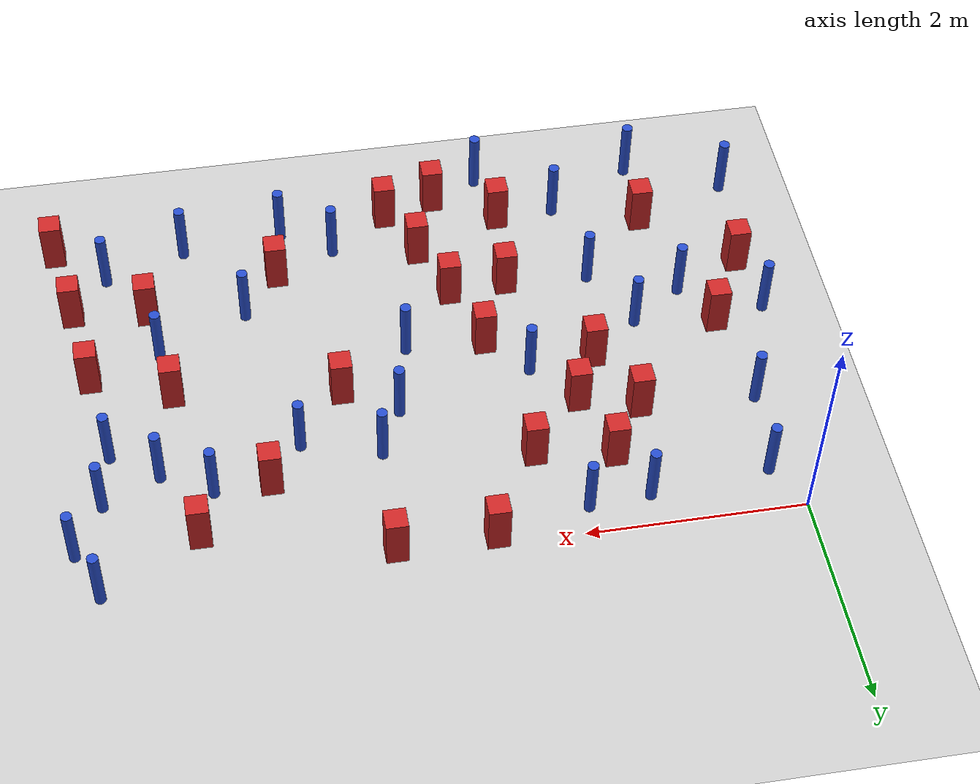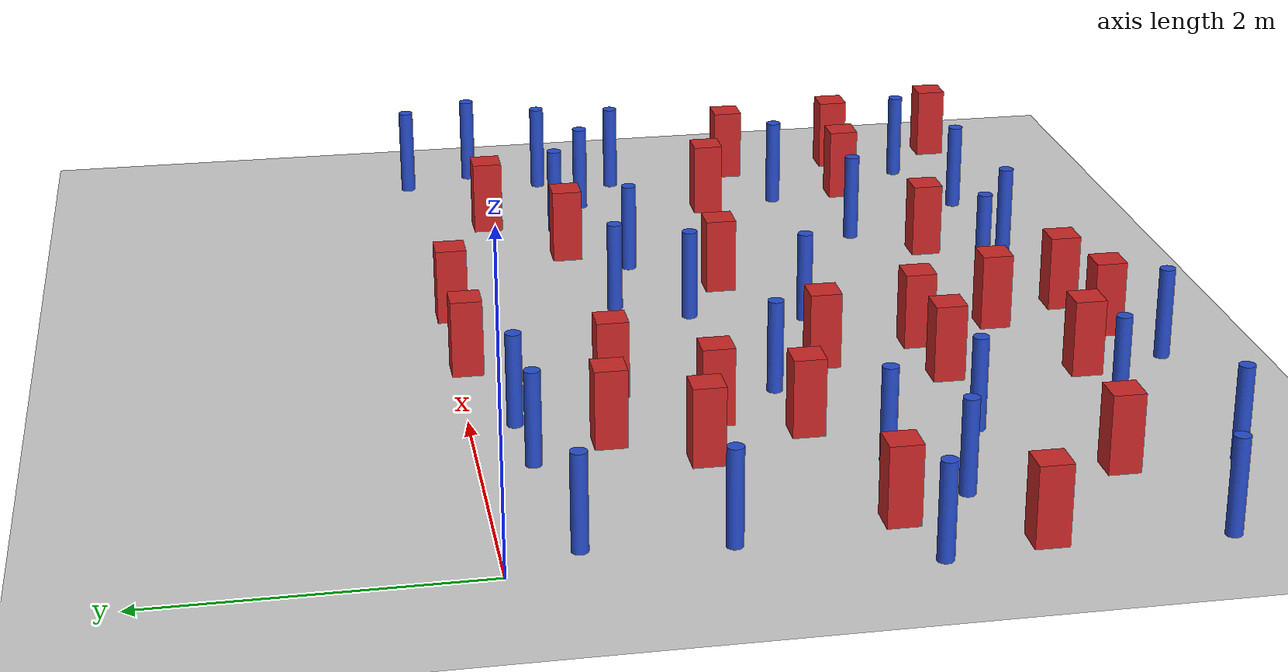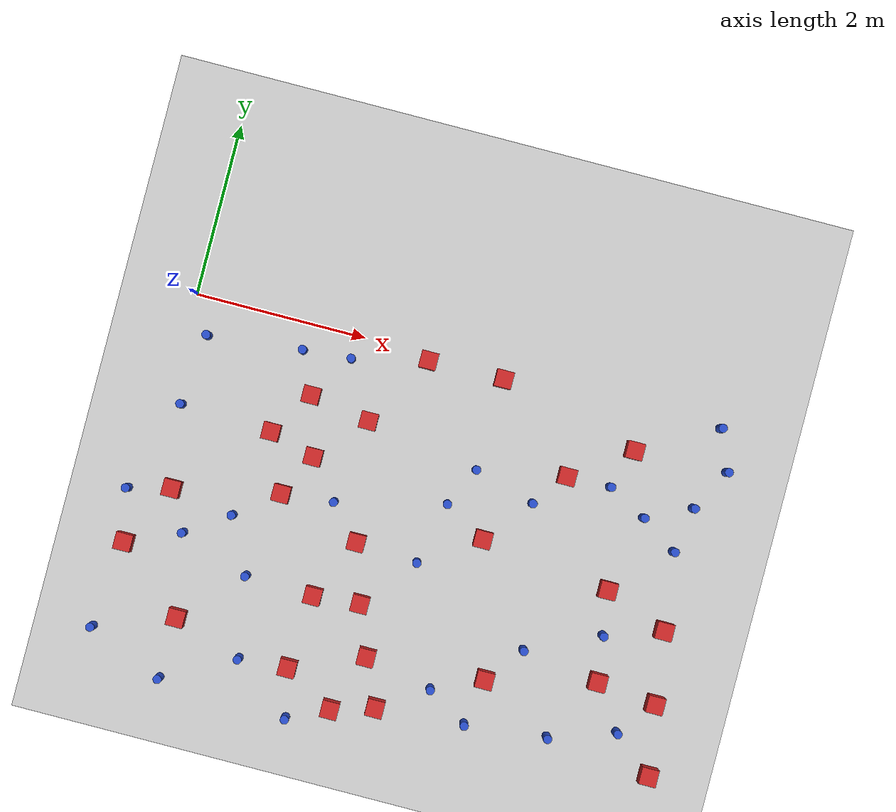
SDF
<sdf version="1.6">
 <world name="default">
  <model name="ground_plane">
   <static>1</static>
   <link name="link">
    <collision name="collision">
     <geometry><plane><normal>0 0 1</normal><size>100 100</size></plane></geometry>
     <surface><friction><ode><mu>100</mu><mu2>50</mu2></ode></friction></surface>
    </collision>
    <visual name="visual">
     <cast_shadows>0</cast_shadows>
     <geometry><plane><normal>0 0 1</normal><size>100 100</size></plane></geometry>
     <material>
      <ambient>1.0 1.0 1.0 1.0</ambient>
      <diffuse>0.8 0.8 0.8 1.0</diffuse>
      <specular>0.01 0.01 0.01 1.000000</specular>
     </material>
    </visual>
   </link>
  </model>
  <model name="NamedLocations">
   <static>true</static>
   <link name="DefaultStart"><pose>8.5 0 0 0 0 3.14</pose></link>
  </model>
  <model name="square_post_obstacle3">
   <static>true</static>
   <pose>3.8937766651 -1.8984932603 1.91545236811e-07 -7.35059704564e-06 1.12565212e-07 2.39332434364e-05</pose>
   <link name="link">
    <pose>0 0 0.25 0 -0 0</pose>
    <inertial>
     <mass>100</mass>
     <inertia>
      <ixx>0.166667</ixx>
      <ixy>0</ixy>
      <ixz>0</ixz>
      <iyy>0.166667</iyy>
      <iyz>0</iyz>
      <izz>0.166667</izz>
     </inertia>
    </inertial>
    <collision name="collision"><geometry><box><size>.2 .2 .5</size></box></geometry></collision>
    <visual name="visual">
     <geometry><box><size>.2 .2 .5</size></box></geometry>
     <material>
      <script><name>Gazebo/Red</name><uri>file://media/materials/scripts/gazebo.material</uri></script>
     </material>
    </visual>
   </link>
  </model>
  <model name="pole_obstacle4">
   <static>true</static>
   <pose>1.04166894507 -2.35484419023 7.38925637345e-09 -8.471706928e-08 1.2497676505e-08 -1.74513093017e-07</pose>
   <link name="link">
    <pose>0 0 0.3 0 -0 0</pose>
    <inertial>
     <mass>1</mass>
     <inertia><ixx>0.145833</ixx><ixy>0</ixy><ixz>0</ixz><iyy>0.145833</iyy><iyz>0</iyz><izz>0.125</izz></inertia>
    </inertial>
    <collision name="collision">
     <geometry><cylinder><radius>0.05</radius><length>.6</length></cylinder></geometry>
    </collision>
    <visual name="visual">
     <geometry><cylinder><radius>0.05</radius><length>.6</length></cylinder></geometry>
     <material>
      <script><name>Gazebo/Blue</name><uri>file://media/materials/scripts/gazebo.material</uri></script>
     </material>
    </visual>
   </link>
  </model>
  <model name="pole_obstacle6">
   <static>true</static>
   <pose>5.61509439641 -1.19399128094 7.38925637345e-09 -8.471706928e-08 1.24976765134e-08 -1.74513093015e-07</pose>
   <link name="link">
    <pose>0 0 0.3 0 -0 0</pose>
    <inertial>
     <mass>1</mass>
     <inertia><ixx>0.145833</ixx><ixy>0</ixy><ixz>0</ixz><iyy>0.145833</iyy><iyz>0</iyz><izz>0.125</izz></inertia>
    </inertial>
    <collision name="collision">
     <geometry><cylinder><radius>0.05</radius><length>.6</length></cylinder></geometry>
    </collision>
    <visual name="visual">
     <geometry><cylinder><radius>0.05</radius><length>.6</length></cylinder></geometry>
     <material>
      <script><name>Gazebo/Blue</name><uri>file://media/materials/scripts/gazebo.material</uri></script>
     </material>
    </visual>
   </link>
  </model>
  <model name="square_post_obstacle9">
   <static>true</static>
   <pose>4.31915654539 -3.44956911372 1.91545236811e-07 -7.35059704564e-06 1.12565212e-07 2.39332434364e-05</pose>
   <link name="link">
    <pose>0 0 0.25 0 -0 0</pose>
    <inertial>
     <mass>100</mass>
     <inertia>
      <ixx>0.166667</ixx>
      <ixy>0</ixy>
      <ixz>0</ixz>
      <iyy>0.166667</iyy>
      <iyz>0</iyz>
      <izz>0.166667</izz>
     </inertia>
    </inertial>
    <collision name="collision"><geometry><box><size>.2 .2 .5</size></box></geometry></collision>
    <visual name="visual">
     <geometry><box><size>.2 .2 .5</size></box></geometry>
     <material>
      <script><name>Gazebo/Red</name><uri>file://media/materials/scripts/gazebo.material</uri></script>
     </material>
    </visual>
   </link>
  </model>
  <model name="square_post_obstacle12">
   <static>true</static>
   <pose>2.49780389506 -2.29794122637 1.91545236811e-07 -7.35059704564e-06 1.12565212e-07 2.39332434364e-05</pose>
   <link name="link">
    <pose>0 0 0.25 0 -0 0</pose>
    <inertial>
     <mass>100</mass>
     <inertia>
      <ixx>0.166667</ixx>
      <ixy>0</ixy>
      <ixz>0</ixz>
      <iyy>0.166667</iyy>
      <iyz>0</iyz>
      <izz>0.166667</izz>
     </inertia>
    </inertial>
    <collision name="collision"><geometry><box><size>.2 .2 .5</size></box></geometry></collision>
    <visual name="visual">
     <geometry><box><size>.2 .2 .5</size></box></geometry>
     <material>
      <script><name>Gazebo/Red</name><uri>file://media/materials/scripts/gazebo.material</uri></script>
     </material>
    </visual>
   </link>
  </model>
  <model name="square_post_obstacle16">
   <static>true</static>
   <pose>6.16754811721 -2.38973344418 1.91545236811e-07 -7.35059704564e-06 1.12565212e-07 2.39332434364e-05</pose>
   <link name="link">
    <pose>0 0 0.25 0 -0 0</pose>
    <inertial>
     <mass>100</mass>
     <inertia>
      <ixx>0.166667</ixx>
      <ixy>0</ixy>
      <ixz>0</ixz>
      <iyy>0.166667</iyy>
      <iyz>0</iyz>
      <izz>0.166667</izz>
     </inertia>
    </inertial>
    <collision name="collision"><geometry><box><size>.2 .2 .5</size></box></geometry></collision>
    <visual name="visual">
     <geometry><box><size>.2 .2 .5</size></box></geometry>
     <material>
      <script><name>Gazebo/Red</name><uri>file://media/materials/scripts/gazebo.material</uri></script>
     </material>
    </visual>
   </link>
  </model>
  <model name="pole_obstacle12">
   <static>true</static>
   <pose>4.33866164105 -1.3552663525 7.38925637345e-09 -8.471706928e-08 1.24976765134e-08 -1.74513093015e-07</pose>
   <link name="link">
    <pose>0 0 0.3 0 -0 0</pose>
    <inertial>
     <mass>1</mass>
     <inertia><ixx>0.145833</ixx><ixy>0</ixy><ixz>0</ixz><iyy>0.145833</iyy><iyz>0</iyz><izz>0.125</izz></inertia>
    </inertial>
    <collision name="collision">
     <geometry><cylinder><radius>0.05</radius><length>.6</length></cylinder></geometry>
    </collision>
    <visual name="visual">
     <geometry><cylinder><radius>0.05</radius><length>.6</length></cylinder></geometry>
     <material>
      <script><name>Gazebo/Blue</name><uri>file://media/materials/scripts/gazebo.material</uri></script>
     </material>
    </visual>
   </link>
  </model>
  <model name="square_post_obstacle23">
   <static>true</static>
   <pose>2.71716408719 -2.96980455667 1.91545236811e-07 -7.35059704564e-06 1.12565212e-07 2.39332434364e-05</pose>
   <link name="link">
    <pose>0 0 0.25 0 -0 0</pose>
    <inertial>
     <mass>100</mass>
     <inertia>
      <ixx>0.166667</ixx>
      <ixy>0</ixy>
      <ixz>0</ixz>
      <iyy>0.166667</iyy>
      <iyz>0</iyz>
      <izz>0.166667</izz>
     </inertia>
    </inertial>
    <collision name="collision"><geometry><box><size>.2 .2 .5</size></box></geometry></collision>
    <visual name="visual">
     <geometry><box><size>.2 .2 .5</size></box></geometry>
     <material>
      <script><name>Gazebo/Red</name><uri>file://media/materials/scripts/gazebo.material</uri></script>
     </material>
    </visual>
   </link>
  </model>
  <model name="square_post_obstacle27">
   <static>true</static>
   <pose>2.68790194657 -4.22749103468 1.91545236811e-07 -7.35059704564e-06 1.12565212e-07 2.39332434364e-05</pose>
   <link name="link">
    <pose>0 0 0.25 0 -0 0</pose>
    <inertial>
     <mass>100</mass>
     <inertia>
      <ixx>0.166667</ixx>
      <ixy>0</ixy>
      <ixz>0</ixz>
      <iyy>0.166667</iyy>
      <iyz>0</iyz>
      <izz>0.166667</izz>
     </inertia>
    </inertial>
    <collision name="collision"><geometry><box><size>.2 .2 .5</size></box></geometry></collision>
    <visual name="visual">
     <geometry><box><size>.2 .2 .5</size></box></geometry>
     <material>
      <script><name>Gazebo/Red</name><uri>file://media/materials/scripts/gazebo.material</uri></script>
     </material>
    </visual>
   </link>
  </model>
  <model name="pole_obstacle25">
   <static>true</static>
   <pose>5.17693976684 -3.91143541986 7.38925637345e-09 -8.47170692798e-08 1.24976764937e-08 -1.74513093023e-07</pose>
   <link name="link">
    <pose>0 0 0.3 0 -0 0</pose>
    <inertial>
     <mass>1</mass>
     <inertia><ixx>0.145833</ixx><ixy>0</ixy><ixz>0</ixz><iyy>0.145833</iyy><iyz>0</iyz><izz>0.125</izz></inertia>
    </inertial>
    <collision name="collision">
     <geometry><cylinder><radius>0.05</radius><length>.6</length></cylinder></geometry>
    </collision>
    <visual name="visual">
     <geometry><cylinder><radius>0.05</radius><length>.6</length></cylinder></geometry>
     <material>
      <script><name>Gazebo/Blue</name><uri>file://media/materials/scripts/gazebo.material</uri></script>
     </material>
    </visual>
   </link>
  </model>
  <model name="square_post_obstacle37">
   <static>true</static>
   <pose>2.77352484609 -0.0713776456526 1.91545236811e-07 -7.35059704564e-06 1.12565212e-07 2.39332434364e-05</pose>
   <link name="link">
    <pose>0 0 0.25 0 -0 0</pose>
    <inertial>
     <mass>100</mass>
     <inertia>
      <ixx>0.166667</ixx>
      <ixy>0</ixy>
      <ixz>0</ixz>
      <iyy>0.166667</iyy>
      <iyz>0</iyz>
      <izz>0.166667</izz>
     </inertia>
    </inertial>
    <collision name="collision"><geometry><box><size>.2 .2 .5</size></box></geometry></collision>
    <visual name="visual">
     <geometry><box><size>.2 .2 .5</size></box></geometry>
     <material>
      <script><name>Gazebo/Red</name><uri>file://media/materials/scripts/gazebo.material</uri></script>
     </material>
    </visual>
   </link>
  </model>
  <model name="square_post_obstacle41">
   <static>true</static>
   <pose>2.28273743575 -0.915989326933 1.91545236811e-07 -7.35059704564e-06 1.12565212e-07 2.39332434364e-05</pose>
   <link name="link">
    <pose>0 0 0.25 0 -0 0</pose>
    <inertial>
     <mass>100</mass>
     <inertia>
      <ixx>0.166667</ixx>
      <ixy>0</ixy>
      <ixz>0</ixz>
      <iyy>0.166667</iyy>
      <iyz>0</iyz>
      <izz>0.166667</izz>
     </inertia>
    </inertial>
    <collision name="collision"><geometry><box><size>.2 .2 .5</size></box></geometry></collision>
    <visual name="visual">
     <geometry><box><size>.2 .2 .5</size></box></geometry>
     <material>
      <script><name>Gazebo/Red</name><uri>file://media/materials/scripts/gazebo.material</uri></script>
     </material>
    </visual>
   </link>
  </model>
  <model name="square_post_obstacle51">
   <static>true</static>
   <pose>5.42591962191 -2.09950732267 1.91545236811e-07 -7.35059704564e-06 1.12565212e-07 2.39332434364e-05</pose>
   <link name="link">
    <pose>0 0 0.25 0 -0 0</pose>
    <inertial>
     <mass>100</mass>
     <inertia>
      <ixx>0.166667</ixx>
      <ixy>0</ixy>
      <ixz>0</ixz>
      <iyy>0.166667</iyy>
      <iyz>0</iyz>
      <izz>0.166667</izz>
     </inertia>
    </inertial>
    <collision name="collision"><geometry><box><size>.2 .2 .5</size></box></geometry></collision>
    <visual name="visual">
     <geometry><box><size>.2 .2 .5</size></box></geometry>
     <material>
      <script><name>Gazebo/Red</name><uri>file://media/materials/scripts/gazebo.material</uri></script>
     </material>
    </visual>
   </link>
  </model>
  <model name="square_post_obstacle55">
   <static>true</static>
   <pose>1.2328728585 -1.31708763319 1.91545236811e-07 -7.35059704564e-06 1.12565212e-07 2.39332434364e-05</pose>
   <link name="link">
    <pose>0 0 0.25 0 -0 0</pose>
    <inertial>
     <mass>100</mass>
     <inertia>
      <ixx>0.166667</ixx>
      <ixy>0</ixy>
      <ixz>0</ixz>
      <iyy>0.166667</iyy>
      <iyz>0</iyz>
      <izz>0.166667</izz>
     </inertia>
    </inertial>
    <collision name="collision"><geometry><box><size>.2 .2 .5</size></box></geometry></collision>
    <visual name="visual">
     <geometry><box><size>.2 .2 .5</size></box></geometry>
     <material>
      <script><name>Gazebo/Red</name><uri>file://media/materials/scripts/gazebo.material</uri></script>
     </material>
    </visual>
   </link>
  </model>
  <model name="pole_obstacle52">
   <static>true</static>
   <pose>-0.193092147477 -3.9942192586 7.38925637345e-09 -8.471706928e-08 1.2497676513e-08 -1.74513093014e-07</pose>
   <link name="link">
    <pose>0 0 0.3 0 -0 0</pose>
    <inertial>
     <mass>1</mass>
     <inertia><ixx>0.145833</ixx><ixy>0</ixy><ixz>0</ixz><iyy>0.145833</iyy><iyz>0</iyz><izz>0.125</izz></inertia>
    </inertial>
    <collision name="collision">
     <geometry><cylinder><radius>0.05</radius><length>.6</length></cylinder></geometry>
    </collision>
    <visual name="visual">
     <geometry><cylinder><radius>0.05</radius><length>.6</length></cylinder></geometry>
     <material>
      <script><name>Gazebo/Blue</name><uri>file://media/materials/scripts/gazebo.material</uri></script>
     </material>
    </visual>
   </link>
  </model>
  <model name="pole_obstacle53">
   <static>true</static>
   <pose>0.698277670628 -4.37610782796 7.38925637345e-09 -8.471706928e-08 1.24976765086e-08 -1.74513093015e-07</pose>
   <link name="link">
    <pose>0 0 0.3 0 -0 0</pose>
    <inertial>
     <mass>1</mass>
     <inertia><ixx>0.145833</ixx><ixy>0</ixy><ixz>0</ixz><iyy>0.145833</iyy><iyz>0</iyz><izz>0.125</izz></inertia>
    </inertial>
    <collision name="collision">
     <geometry><cylinder><radius>0.05</radius><length>.6</length></cylinder></geometry>
    </collision>
    <visual name="visual">
     <geometry><cylinder><radius>0.05</radius><length>.6</length></cylinder></geometry>
     <material>
      <script><name>Gazebo/Blue</name><uri>file://media/materials/scripts/gazebo.material</uri></script>
     </material>
    </visual>
   </link>
  </model>
  <model name="pole_obstacle54">
   <static>true</static>
   <pose>6.14248458608 -0.94422953435 7.38925637345e-09 -8.47170692799e-08 1.24976765038e-08 -1.74513093018e-07</pose>
   <link name="link">
    <pose>0 0 0.3 0 -0 0</pose>
    <inertial>
     <mass>1</mass>
     <inertia><ixx>0.145833</ixx><ixy>0</ixy><ixz>0</ixz><iyy>0.145833</iyy><iyz>0</iyz><izz>0.125</izz></inertia>
    </inertial>
    <collision name="collision">
     <geometry><cylinder><radius>0.05</radius><length>.6</length></cylinder></geometry>
    </collision>
    <visual name="visual">
     <geometry><cylinder><radius>0.05</radius><length>.6</length></cylinder></geometry>
     <material>
      <script><name>Gazebo/Blue</name><uri>file://media/materials/scripts/gazebo.material</uri></script>
     </material>
    </visual>
   </link>
  </model>
  <model name="square_post_obstacle61">
   <static>true</static>
   <pose>0.294672739264 -2.23301961076 1.91545236811e-07 -7.35059704564e-06 1.12565212e-07 2.39332434364e-05</pose>
   <link name="link">
    <pose>0 0 0.25 0 -0 0</pose>
    <inertial>
     <mass>100</mass>
     <inertia>
      <ixx>0.166667</ixx>
      <ixy>0</ixy>
      <ixz>0</ixz>
      <iyy>0.166667</iyy>
      <iyz>0</iyz>
      <izz>0.166667</izz>
     </inertia>
    </inertial>
    <collision name="collision"><geometry><box><size>.2 .2 .5</size></box></geometry></collision>
    <visual name="visual">
     <geometry><box><size>.2 .2 .5</size></box></geometry>
     <material>
      <script><name>Gazebo/Red</name><uri>file://media/materials/scripts/gazebo.material</uri></script>
     </material>
    </visual>
   </link>
  </model>
  <model name="pole_obstacle58">
   <static>true</static>
   <pose>0.153884641596 -1.27039518763 7.38925637345e-09 -8.47170692799e-08 1.24976765106e-08 -1.74513093015e-07</pose>
   <link name="link">
    <pose>0 0 0.3 0 -0 0</pose>
    <inertial>
     <mass>1</mass>
     <inertia><ixx>0.145833</ixx><ixy>0</ixy><ixz>0</ixz><iyy>0.145833</iyy><iyz>0</iyz><izz>0.125</izz></inertia>
    </inertial>
    <collision name="collision">
     <geometry><cylinder><radius>0.05</radius><length>.6</length></cylinder></geometry>
    </collision>
    <visual name="visual">
     <geometry><cylinder><radius>0.05</radius><length>.6</length></cylinder></geometry>
     <material>
      <script><name>Gazebo/Blue</name><uri>file://media/materials/scripts/gazebo.material</uri></script>
     </material>
    </visual>
   </link>
  </model>
  <model name="square_post_obstacle62">
   <static>true</static>
   <pose>3.18496818869 -4.08031341453 1.91545236811e-07 -7.35059704564e-06 1.12565212e-07 2.39332434364e-05</pose>
   <link name="link">
    <pose>0 0 0.25 0 -0 0</pose>
    <inertial>
     <mass>100</mass>
     <inertia>
      <ixx>0.166667</ixx>
      <ixy>0</ixy>
      <ixz>0</ixz>
      <iyy>0.166667</iyy>
      <iyz>0</iyz>
      <izz>0.166667</izz>
     </inertia>
    </inertial>
    <collision name="collision"><geometry><box><size>.2 .2 .5</size></box></geometry></collision>
    <visual name="visual">
     <geometry><box><size>.2 .2 .5</size></box></geometry>
     <material>
      <script><name>Gazebo/Red</name><uri>file://media/materials/scripts/gazebo.material</uri></script>
     </material>
    </visual>
   </link>
  </model>
  <model name="square_post_obstacle67">
   <static>true</static>
   <pose>1.77316426952 -1.47517456321 1.91545236811e-07 -7.35059704564e-06 1.12565212e-07 2.39332434364e-05</pose>
   <link name="link">
    <pose>0 0 0.25 0 -0 0</pose>
    <inertial>
     <mass>100</mass>
     <inertia>
      <ixx>0.166667</ixx>
      <ixy>0</ixy>
      <ixz>0</ixz>
      <iyy>0.166667</iyy>
      <iyz>0</iyz>
      <izz>0.166667</izz>
     </inertia>
    </inertial>
    <collision name="collision"><geometry><box><size>.2 .2 .5</size></box></geometry></collision>
    <visual name="visual">
     <geometry><box><size>.2 .2 .5</size></box></geometry>
     <material>
      <script><name>Gazebo/Red</name><uri>file://media/materials/scripts/gazebo.material</uri></script>
     </material>
    </visual>
   </link>
  </model>
  <model name="square_post_obstacle69">
   <static>true</static>
   <pose>4.64451143033 -0.956926021396 1.91545236811e-07 -7.35059704564e-06 1.12565212e-07 2.39332434364e-05</pose>
   <link name="link">
    <pose>0 0 0.25 0 -0 0</pose>
    <inertial>
     <mass>100</mass>
     <inertia>
      <ixx>0.166667</ixx>
      <ixy>0</ixy>
      <ixz>0</ixz>
      <iyy>0.166667</iyy>
      <iyz>0</iyz>
      <izz>0.166667</izz>
     </inertia>
    </inertial>
    <collision name="collision"><geometry><box><size>.2 .2 .5</size></box></geometry></collision>
    <visual name="visual">
     <geometry><box><size>.2 .2 .5</size></box></geometry>
     <material>
      <script><name>Gazebo/Red</name><uri>file://media/materials/scripts/gazebo.material</uri></script>
     </material>
    </visual>
   </link>
  </model>
  <model name="square_post_obstacle71">
   <static>true</static>
   <pose>2.17058475366 -3.01627403967 1.91545236811e-07 -7.35059704564e-06 1.12565212e-07 2.39332434364e-05</pose>
   <link name="link">
    <pose>0 0 0.25 0 -0 0</pose>
    <inertial>
     <mass>100</mass>
     <inertia>
      <ixx>0.166667</ixx>
      <ixy>0</ixy>
      <ixz>0</ixz>
      <iyy>0.166667</iyy>
      <iyz>0</iyz>
      <izz>0.166667</izz>
     </inertia>
    </inertial>
    <collision name="collision"><geometry><box><size>.2 .2 .5</size></box></geometry></collision>
    <visual name="visual">
     <geometry><box><size>.2 .2 .5</size></box></geometry>
     <material>
      <script><name>Gazebo/Red</name><uri>file://media/materials/scripts/gazebo.material</uri></script>
     </material>
    </visual>
   </link>
  </model>
  <model name="pole_obstacle75">
   <static>true</static>
   <pose>1.36838175106 -2.98972073504 7.38925637345e-09 -8.47170692799e-08 1.24976765053e-08 -1.74513093017e-07</pose>
   <link name="link">
    <pose>0 0 0.3 0 -0 0</pose>
    <inertial>
     <mass>1</mass>
     <inertia><ixx>0.145833</ixx><ixy>0</ixy><ixz>0</ixz><iyy>0.145833</iyy><iyz>0</iyz><izz>0.125</izz></inertia>
    </inertial>
    <collision name="collision">
     <geometry><cylinder><radius>0.05</radius><length>.6</length></cylinder></geometry>
    </collision>
    <visual name="visual">
     <geometry><cylinder><radius>0.05</radius><length>.6</length></cylinder></geometry>
     <material>
      <script><name>Gazebo/Blue</name><uri>file://media/materials/scripts/gazebo.material</uri></script>
     </material>
    </visual>
   </link>
  </model>
  <model name="pole_obstacle77">
   <static>true</static>
   <pose>5.50438523685 -2.61971904938 7.38925637345e-09 -8.47170692798e-08 1.24976764937e-08 -1.74513093023e-07</pose>
   <link name="link">
    <pose>0 0 0.3 0 -0 0</pose>
    <inertial>
     <mass>1</mass>
     <inertia><ixx>0.145833</ixx><ixy>0</ixy><ixz>0</ixz><iyy>0.145833</iyy><iyz>0</iyz><izz>0.125</izz></inertia>
    </inertial>
    <collision name="collision">
     <geometry><cylinder><radius>0.05</radius><length>.6</length></cylinder></geometry>
    </collision>
    <visual name="visual">
     <geometry><cylinder><radius>0.05</radius><length>.6</length></cylinder></geometry>
     <material>
      <script><name>Gazebo/Blue</name><uri>file://media/materials/scripts/gazebo.material</uri></script>
     </material>
    </visual>
   </link>
  </model>
  <model name="pole_obstacle85">
   <static>true</static>
   <pose>4.21934948031 -4.00681977218 7.38925637345e-09 -8.47170692796e-08 1.24976764791e-08 -1.74513093031e-07</pose>
   <link name="link">
    <pose>0 0 0.3 0 -0 0</pose>
    <inertial>
     <mass>1</mass>
     <inertia><ixx>0.145833</ixx><ixy>0</ixy><ixz>0</ixz><iyy>0.145833</iyy><iyz>0</iyz><izz>0.125</izz></inertia>
    </inertial>
    <collision name="collision">
     <geometry><cylinder><radius>0.05</radius><length>.6</length></cylinder></geometry>
    </collision>
    <visual name="visual">
     <geometry><cylinder><radius>0.05</radius><length>.6</length></cylinder></geometry>
     <material>
      <script><name>Gazebo/Blue</name><uri>file://media/materials/scripts/gazebo.material</uri></script>
     </material>
    </visual>
   </link>
  </model>
  <model name="pole_obstacle95">
   <static>true</static>
   <pose>0.243311991185 -0.433131160143 7.38925637345e-09 -8.47170692798e-08 1.24976765003e-08 -1.74513093019e-07</pose>
   <link name="link">
    <pose>0 0 0.3 0 -0 0</pose>
    <inertial>
     <mass>1</mass>
     <inertia><ixx>0.145833</ixx><ixy>0</ixy><ixz>0</ixz><iyy>0.145833</iyy><iyz>0</iyz><izz>0.125</izz></inertia>
    </inertial>
    <collision name="collision">
     <geometry><cylinder><radius>0.05</radius><length>.6</length></cylinder></geometry>
    </collision>
    <visual name="visual">
     <geometry><cylinder><radius>0.05</radius><length>.6</length></cylinder></geometry>
     <material>
      <script><name>Gazebo/Blue</name><uri>file://media/materials/scripts/gazebo.material</uri></script>
     </material>
    </visual>
   </link>
  </model>
  <model name="square_post_obstacle88">
   <static>true</static>
   <pose>5.31885383164 -0.474055349663 1.91545236811e-07 -7.35059704564e-06 1.12565212e-07 2.39332434364e-05</pose>
   <link name="link">
    <pose>0 0 0.25 0 -0 0</pose>
    <inertial>
     <mass>100</mass>
     <inertia>
      <ixx>0.166667</ixx>
      <ixy>0</ixy>
      <ixz>0</ixz>
      <iyy>0.166667</iyy>
      <iyz>0</iyz>
      <izz>0.166667</izz>
     </inertia>
    </inertial>
    <collision name="collision"><geometry><box><size>.2 .2 .5</size></box></geometry></collision>
    <visual name="visual">
     <geometry><box><size>.2 .2 .5</size></box></geometry>
     <material>
      <script><name>Gazebo/Red</name><uri>file://media/materials/scripts/gazebo.material</uri></script>
     </material>
    </visual>
   </link>
  </model>
  <model name="pole_obstacle103">
   <static>true</static>
   <pose>1.91048069236 -0.276002448584 7.38925637345e-09 -8.47170692798e-08 1.24976764989e-08 -1.74513093022e-07</pose>
   <link name="link">
    <pose>0 0 0.3 0 -0 0</pose>
    <inertial>
     <mass>1</mass>
     <inertia><ixx>0.145833</ixx><ixy>0</ixy><ixz>0</ixz><iyy>0.145833</iyy><iyz>0</iyz><izz>0.125</izz></inertia>
    </inertial>
    <collision name="collision">
     <geometry><cylinder><radius>0.05</radius><length>.6</length></cylinder></geometry>
    </collision>
    <visual name="visual">
     <geometry><cylinder><radius>0.05</radius><length>.6</length></cylinder></geometry>
     <material>
      <script><name>Gazebo/Blue</name><uri>file://media/materials/scripts/gazebo.material</uri></script>
     </material>
    </visual>
   </link>
  </model>
  <model name="square_post_obstacle104">
   <static>true</static>
   <pose>0.720083636477 -3.65393101458 1.91545236811e-07 -7.35059704564e-06 1.12565212e-07 2.39332434364e-05</pose>
   <link name="link">
    <pose>0 0 0.25 0 -0 0</pose>
    <inertial>
     <mass>100</mass>
     <inertia>
      <ixx>0.166667</ixx>
      <ixy>0</ixy>
      <ixz>0</ixz>
      <iyy>0.166667</iyy>
      <iyz>0</iyz>
      <izz>0.166667</izz>
     </inertia>
    </inertial>
    <collision name="collision"><geometry><box><size>.2 .2 .5</size></box></geometry></collision>
    <visual name="visual">
     <geometry><box><size>.2 .2 .5</size></box></geometry>
     <material>
      <script><name>Gazebo/Red</name><uri>file://media/materials/scripts/gazebo.material</uri></script>
     </material>
    </visual>
   </link>
  </model>
  <model name="square_post_obstacle111">
   <static>true</static>
   <pose>3.66208074283 -0.061306846736 1.91545236811e-07 -7.35059704564e-06 1.12565212e-07 2.39332434364e-05</pose>
   <link name="link">
    <pose>0 0 0.25 0 -0 0</pose>
    <inertial>
     <mass>100</mass>
     <inertia>
      <ixx>0.166667</ixx>
      <ixy>0</ixy>
      <ixz>0</ixz>
      <iyy>0.166667</iyy>
      <iyz>0</iyz>
      <izz>0.166667</izz>
     </inertia>
    </inertial>
    <collision name="collision"><geometry><box><size>.2 .2 .5</size></box></geometry></collision>
    <visual name="visual">
     <geometry><box><size>.2 .2 .5</size></box></geometry>
     <material>
      <script><name>Gazebo/Red</name><uri>file://media/materials/scripts/gazebo.material</uri></script>
     </material>
    </visual>
   </link>
  </model>
  <model name="pole_obstacle121">
   <static>true</static>
   <pose>4.66373572077 -3.01061772226 7.38925637345e-09 -8.47170692798e-08 1.24976764937e-08 -1.74513093023e-07</pose>
   <link name="link">
    <pose>0 0 0.3 0 -0 0</pose>
    <inertial>
     <mass>1</mass>
     <inertia><ixx>0.145833</ixx><ixy>0</ixy><ixz>0</ixz><iyy>0.145833</iyy><iyz>0</iyz><izz>0.125</izz></inertia>
    </inertial>
    <collision name="collision">
     <geometry><cylinder><radius>0.05</radius><length>.6</length></cylinder></geometry>
    </collision>
    <visual name="visual">
     <geometry><cylinder><radius>0.05</radius><length>.6</length></cylinder></geometry>
     <material>
      <script><name>Gazebo/Blue</name><uri>file://media/materials/scripts/gazebo.material</uri></script>
     </material>
    </visual>
   </link>
  </model>
  <model name="pole_obstacle123">
   <static>true</static>
   <pose>2.21758837053 -4.45521615933 7.38925637345e-09 -8.47170692798e-08 1.24976765033e-08 -1.74513093019e-07</pose>
   <link name="link">
    <pose>0 0 0.3 0 -0 0</pose>
    <inertial>
     <mass>1</mass>
     <inertia><ixx>0.145833</ixx><ixy>0</ixy><ixz>0</ixz><iyy>0.145833</iyy><iyz>0</iyz><izz>0.125</izz></inertia>
    </inertial>
    <collision name="collision">
     <geometry><cylinder><radius>0.05</radius><length>.6</length></cylinder></geometry>
    </collision>
    <visual name="visual">
     <geometry><cylinder><radius>0.05</radius><length>.6</length></cylinder></geometry>
     <material>
      <script><name>Gazebo/Blue</name><uri>file://media/materials/scripts/gazebo.material</uri></script>
     </material>
    </visual>
   </link>
  </model>
  <model name="square_post_obstacle121">
   <static>true</static>
   <pose>1.52423368045 -1.97431429524 1.91545236811e-07 -7.35059704564e-06 1.12565212e-07 2.39332434364e-05</pose>
   <link name="link">
    <pose>0 0 0.25 0 -0 0</pose>
    <inertial>
     <mass>100</mass>
     <inertia>
      <ixx>0.166667</ixx>
      <ixy>0</ixy>
      <ixz>0</ixz>
      <iyy>0.166667</iyy>
      <iyz>0</iyz>
      <izz>0.166667</izz>
     </inertia>
    </inertial>
    <collision name="collision"><geometry><box><size>.2 .2 .5</size></box></geometry></collision>
    <visual name="visual">
     <geometry><box><size>.2 .2 .5</size></box></geometry>
     <material>
      <script><name>Gazebo/Red</name><uri>file://media/materials/scripts/gazebo.material</uri></script>
     </material>
    </visual>
   </link>
  </model>
  <model name="square_post_obstacle123">
   <static>true</static>
   <pose>1.5717082251 -0.795782132704 1.91545236811e-07 -7.35059704564e-06 1.12565212e-07 2.39332434364e-05</pose>
   <link name="link">
    <pose>0 0 0.25 0 -0 0</pose>
    <inertial>
     <mass>100</mass>
     <inertia>
      <ixx>0.166667</ixx>
      <ixy>0</ixy>
      <ixz>0</ixz>
      <iyy>0.166667</iyy>
      <iyz>0</iyz>
      <izz>0.166667</izz>
     </inertia>
    </inertial>
    <collision name="collision"><geometry><box><size>.2 .2 .5</size></box></geometry></collision>
    <visual name="visual">
     <geometry><box><size>.2 .2 .5</size></box></geometry>
     <material>
      <script><name>Gazebo/Red</name><uri>file://media/materials/scripts/gazebo.material</uri></script>
     </material>
    </visual>
   </link>
  </model>
  <model name="pole_obstacle141">
   <static>true</static>
   <pose>6.21714708653 0.0231603762107 7.38925637345e-09 -8.47170692801e-08 1.24976765199e-08 -1.74513093011e-07</pose>
   <link name="link">
    <pose>0 0 0.3 0 -0 0</pose>
    <inertial>
     <mass>1</mass>
     <inertia><ixx>0.145833</ixx><ixy>0</ixy><ixz>0</ixz><iyy>0.145833</iyy><iyz>0</iyz><izz>0.125</izz></inertia>
    </inertial>
    <collision name="collision">
     <geometry><cylinder><radius>0.05</radius><length>.6</length></cylinder></geometry>
    </collision>
    <visual name="visual">
     <geometry><cylinder><radius>0.05</radius><length>.6</length></cylinder></geometry>
     <material>
      <script><name>Gazebo/Blue</name><uri>file://media/materials/scripts/gazebo.material</uri></script>
     </material>
    </visual>
   </link>
  </model>
  <model name="square_post_obstacle129">
   <static>true</static>
   <pose>2.09846159384 -3.8894472183 1.91545236811e-07 -7.35059704564e-06 1.12565212e-07 2.39332434364e-05</pose>
   <link name="link">
    <pose>0 0 0.25 0 -0 0</pose>
    <inertial>
     <mass>100</mass>
     <inertia>
      <ixx>0.166667</ixx>
      <ixy>0</ixy>
      <ixz>0</ixz>
      <iyy>0.166667</iyy>
      <iyz>0</iyz>
      <izz>0.166667</izz>
     </inertia>
    </inertial>
    <collision name="collision"><geometry><box><size>.2 .2 .5</size></box></geometry></collision>
    <visual name="visual">
     <geometry><box><size>.2 .2 .5</size></box></geometry>
     <material>
      <script><name>Gazebo/Red</name><uri>file://media/materials/scripts/gazebo.material</uri></script>
     </material>
    </visual>
   </link>
  </model>
  <model name="pole_obstacle142">
   <static>true</static>
   <pose>1.34808348472 -0.319355898431 7.38925637345e-09 -8.47170692799e-08 1.24976765065e-08 -1.74513093017e-07</pose>
   <link name="link">
    <pose>0 0 0.3 0 -0 0</pose>
    <inertial>
     <mass>1</mass>
     <inertia><ixx>0.145833</ixx><ixy>0</ixy><ixz>0</ixz><iyy>0.145833</iyy><iyz>0</iyz><izz>0.125</izz></inertia>
    </inertial>
    <collision name="collision">
     <geometry><cylinder><radius>0.05</radius><length>.6</length></cylinder></geometry>
    </collision>
    <visual name="visual">
     <geometry><cylinder><radius>0.05</radius><length>.6</length></cylinder></geometry>
     <material>
      <script><name>Gazebo/Blue</name><uri>file://media/materials/scripts/gazebo.material</uri></script>
     </material>
    </visual>
   </link>
  </model>
  <model name="square_post_obstacle140">
   <static>true</static>
   <pose>6.41233193549 -4.04473122499 1.91545236811e-07 -7.35059704564e-06 1.12565212e-07 2.39332434364e-05</pose>
   <link name="link">
    <pose>0 0 0.25 0 -0 0</pose>
    <inertial>
     <mass>100</mass>
     <inertia>
      <ixx>0.166667</ixx>
      <ixy>0</ixy>
      <ixz>0</ixz>
      <iyy>0.166667</iyy>
      <iyz>0</iyz>
      <izz>0.166667</izz>
     </inertia>
    </inertial>
    <collision name="collision"><geometry><box><size>.2 .2 .5</size></box></geometry></collision>
    <visual name="visual">
     <geometry><box><size>.2 .2 .5</size></box></geometry>
     <material>
      <script><name>Gazebo/Red</name><uri>file://media/materials/scripts/gazebo.material</uri></script>
     </material>
    </visual>
   </link>
  </model>
  <model name="square_post_obstacle149">
   <static>true</static>
   <pose>6.2806677624 -3.23127119523 1.91545236811e-07 -7.35059704564e-06 1.12565212e-07 2.39332434364e-05</pose>
   <link name="link">
    <pose>0 0 0.25 0 -0 0</pose>
    <inertial>
     <mass>100</mass>
     <inertia>
      <ixx>0.166667</ixx>
      <ixy>0</ixy>
      <ixz>0</ixz>
      <iyy>0.166667</iyy>
      <iyz>0</iyz>
      <izz>0.166667</izz>
     </inertia>
    </inertial>
    <collision name="collision"><geometry><box><size>.2 .2 .5</size></box></geometry></collision>
    <visual name="visual">
     <geometry><box><size>.2 .2 .5</size></box></geometry>
     <material>
      <script><name>Gazebo/Red</name><uri>file://media/materials/scripts/gazebo.material</uri></script>
     </material>
    </visual>
   </link>
  </model>
  <model name="pole_obstacle159">
   <static>true</static>
   <pose>3.7430631563 -3.7136076502 7.38925637345e-09 -8.47170692798e-08 1.24976764939e-08 -1.74513093025e-07</pose>
   <link name="link">
    <pose>0 0 0.3 0 -0 0</pose>
    <inertial>
     <mass>1</mass>
     <inertia><ixx>0.145833</ixx><ixy>0</ixy><ixz>0</ixz><iyy>0.145833</iyy><iyz>0</iyz><izz>0.125</izz></inertia>
    </inertial>
    <collision name="collision">
     <geometry><cylinder><radius>0.05</radius><length>.6</length></cylinder></geometry>
    </collision>
    <visual name="visual">
     <geometry><cylinder><radius>0.05</radius><length>.6</length></cylinder></geometry>
     <material>
      <script><name>Gazebo/Blue</name><uri>file://media/materials/scripts/gazebo.material</uri></script>
     </material>
    </visual>
   </link>
  </model>
  <model name="pole_obstacle170">
   <static>true</static>
   <pose>5.93918323599 -3.65657568095 7.38925637345e-09 -8.47170692798e-08 1.24976764937e-08 -1.74513093023e-07</pose>
   <link name="link">
    <pose>0 0 0.3 0 -0 0</pose>
    <inertial>
     <mass>1</mass>
     <inertia><ixx>0.145833</ixx><ixy>0</ixy><ixz>0</ixz><iyy>0.145833</iyy><iyz>0</iyz><izz>0.125</izz></inertia>
    </inertial>
    <collision name="collision">
     <geometry><cylinder><radius>0.05</radius><length>.6</length></cylinder></geometry>
    </collision>
    <visual name="visual">
     <geometry><cylinder><radius>0.05</radius><length>.6</length></cylinder></geometry>
     <material>
      <script><name>Gazebo/Blue</name><uri>file://media/materials/scripts/gazebo.material</uri></script>
     </material>
    </visual>
   </link>
  </model>
  <model name="pole_obstacle173">
   <static>true</static>
   <pose>6.41117963432 -0.446495309333 7.38925637345e-09 -8.47170692798e-08 1.24976765003e-08 -1.7451309302e-07</pose>
   <link name="link">
    <pose>0 0 0.3 0 -0 0</pose>
    <inertial>
     <mass>1</mass>
     <inertia><ixx>0.145833</ixx><ixy>0</ixy><ixz>0</ixz><iyy>0.145833</iyy><iyz>0</iyz><izz>0.125</izz></inertia>
    </inertial>
    <collision name="collision">
     <geometry><cylinder><radius>0.05</radius><length>.6</length></cylinder></geometry>
    </collision>
    <visual name="visual">
     <geometry><cylinder><radius>0.05</radius><length>.6</length></cylinder></geometry>
     <material>
      <script><name>Gazebo/Blue</name><uri>file://media/materials/scripts/gazebo.material</uri></script>
     </material>
    </visual>
   </link>
  </model>
  <model name="square_post_obstacle166">
   <static>true</static>
   <pose>-0.0821144699803 -2.96310348254 1.91545236811e-07 -7.35059704564e-06 1.12565212e-07 2.39332434364e-05</pose>
   <link name="link">
    <pose>0 0 0.25 0 -0 0</pose>
    <inertial>
     <mass>100</mass>
     <inertia>
      <ixx>0.166667</ixx>
      <ixy>0</ixy>
      <ixz>0</ixz>
      <iyy>0.166667</iyy>
      <iyz>0</iyz>
      <izz>0.166667</izz>
     </inertia>
    </inertial>
    <collision name="collision"><geometry><box><size>.2 .2 .5</size></box></geometry></collision>
    <visual name="visual">
     <geometry><box><size>.2 .2 .5</size></box></geometry>
     <material>
      <script><name>Gazebo/Red</name><uri>file://media/materials/scripts/gazebo.material</uri></script>
     </material>
    </visual>
   </link>
  </model>
  <model name="square_post_obstacle168">
   <static>true</static>
   <pose>2.94095254374 -3.54323546872 1.91545236811e-07 -7.35059704564e-06 1.12565212e-07 2.39332434364e-05</pose>
   <link name="link">
    <pose>0 0 0.25 0 -0 0</pose>
    <inertial>
     <mass>100</mass>
     <inertia>
      <ixx>0.166667</ixx>
      <ixy>0</ixy>
      <ixz>0</ixz>
      <iyy>0.166667</iyy>
      <iyz>0</iyz>
      <izz>0.166667</izz>
     </inertia>
    </inertial>
    <collision name="collision"><geometry><box><size>.2 .2 .5</size></box></geometry></collision>
    <visual name="visual">
     <geometry><box><size>.2 .2 .5</size></box></geometry>
     <material>
      <script><name>Gazebo/Red</name><uri>file://media/materials/scripts/gazebo.material</uri></script>
     </material>
    </visual>
   </link>
  </model>
  <model name="pole_obstacle178">
   <static>true</static>
   <pose>3.61986130813 -1.14708166662 7.38925637345e-09 -8.471706928e-08 1.24976765152e-08 -1.74513093012e-07</pose>
   <link name="link">
    <pose>0 0 0.3 0 -0 0</pose>
    <inertial>
     <mass>1</mass>
     <inertia><ixx>0.145833</ixx><ixy>0</ixy><ixz>0</ixz><iyy>0.145833</iyy><iyz>0</iyz><izz>0.125</izz></inertia>
    </inertial>
    <collision name="collision">
     <geometry><cylinder><radius>0.05</radius><length>.6</length></cylinder></geometry>
    </collision>
    <visual name="visual">
     <geometry><cylinder><radius>0.05</radius><length>.6</length></cylinder></geometry>
     <material>
      <script><name>Gazebo/Blue</name><uri>file://media/materials/scripts/gazebo.material</uri></script>
     </material>
    </visual>
   </link>
  </model>
  <model name="pole_obstacle181">
   <static>true</static>
   <pose>3.2275091018 -2.34728023125 7.38925637345e-09 -8.47170692798e-08 1.24976764939e-08 -1.74513093025e-07</pose>
   <link name="link">
    <pose>0 0 0.3 0 -0 0</pose>
    <inertial>
     <mass>1</mass>
     <inertia><ixx>0.145833</ixx><ixy>0</ixy><ixz>0</ixz><iyy>0.145833</iyy><iyz>0</iyz><izz>0.125</izz></inertia>
    </inertial>
    <collision name="collision">
     <geometry><cylinder><radius>0.05</radius><length>.6</length></cylinder></geometry>
    </collision>
    <visual name="visual">
     <geometry><cylinder><radius>0.05</radius><length>.6</length></cylinder></geometry>
     <material>
      <script><name>Gazebo/Blue</name><uri>file://media/materials/scripts/gazebo.material</uri></script>
     </material>
    </visual>
   </link>
  </model>
  <model name="pole_obstacle184">
   <static>true</static>
   <pose>0.543892295929 -2.69283555546 7.38925637345e-09 -8.471706928e-08 1.2497676512e-08 -1.74513093015e-07</pose>
   <link name="link">
    <pose>0 0 0.3 0 -0 0</pose>
    <inertial>
     <mass>1</mass>
     <inertia><ixx>0.145833</ixx><ixy>0</ixy><ixz>0</ixz><iyy>0.145833</iyy><iyz>0</iyz><izz>0.125</izz></inertia>
    </inertial>
    <collision name="collision">
     <geometry><cylinder><radius>0.05</radius><length>.6</length></cylinder></geometry>
    </collision>
    <visual name="visual">
     <geometry><cylinder><radius>0.05</radius><length>.6</length></cylinder></geometry>
     <material>
      <script><name>Gazebo/Blue</name><uri>file://media/materials/scripts/gazebo.material</uri></script>
     </material>
    </visual>
   </link>
  </model>
  <model name="pole_obstacle185">
   <static>true</static>
   <pose>6.04629150223 -1.48341224194 7.38925637345e-09 -8.471706928e-08 1.24976765134e-08 -1.74513093015e-07</pose>
   <link name="link">
    <pose>0 0 0.3 0 -0 0</pose>
    <inertial>
     <mass>1</mass>
     <inertia><ixx>0.145833</ixx><ixy>0</ixy><ixz>0</ixz><iyy>0.145833</iyy><iyz>0</iyz><izz>0.125</izz></inertia>
    </inertial>
    <collision name="collision">
     <geometry><cylinder><radius>0.05</radius><length>.6</length></cylinder></geometry>
    </collision>
    <visual name="visual">
     <geometry><cylinder><radius>0.05</radius><length>.6</length></cylinder></geometry>
     <material>
      <script><name>Gazebo/Blue</name><uri>file://media/materials/scripts/gazebo.material</uri></script>
     </material>
    </visual>
   </link>
  </model>
  <model name="square_post_obstacle190">
   <static>true</static>
   <pose>5.57932366969 -3.14852615712 1.91545236811e-07 -7.35059704564e-06 1.12565212e-07 2.39332434364e-05</pose>
   <link name="link">
    <pose>0 0 0.25 0 -0 0</pose>
    <inertial>
     <mass>100</mass>
     <inertia>
      <ixx>0.166667</ixx>
      <ixy>0</ixy>
      <ixz>0</ixz>
      <iyy>0.166667</iyy>
      <iyz>0</iyz>
      <izz>0.166667</izz>
     </inertia>
    </inertial>
    <collision name="collision"><geometry><box><size>.2 .2 .5</size></box></geometry></collision>
    <visual name="visual">
     <geometry><box><size>.2 .2 .5</size></box></geometry>
     <material>
      <script><name>Gazebo/Red</name><uri>file://media/materials/scripts/gazebo.material</uri></script>
     </material>
    </visual>
   </link>
  </model>
  <model name="pole_obstacle212">
   <static>true</static>
   <pose>2.13190995035 -1.91592114792 7.38925637345e-09 -8.471706928e-08 1.24976765152e-08 -1.74513093012e-07</pose>
   <link name="link">
    <pose>0 0 0.3 0 -0 0</pose>
    <inertial>
     <mass>1</mass>
     <inertia><ixx>0.145833</ixx><ixy>0</ixy><ixz>0</ixz><iyy>0.145833</iyy><iyz>0</iyz><izz>0.125</izz></inertia>
    </inertial>
    <collision name="collision">
     <geometry><cylinder><radius>0.05</radius><length>.6</length></cylinder></geometry>
    </collision>
    <visual name="visual">
     <geometry><cylinder><radius>0.05</radius><length>.6</length></cylinder></geometry>
     <material>
      <script><name>Gazebo/Blue</name><uri>file://media/materials/scripts/gazebo.material</uri></script>
     </material>
    </visual>
   </link>
  </model>
  <model name="pole_obstacle213">
   <static>true</static>
   <pose>3.39743898625 -1.61039666869 7.38925637345e-09 -8.471706928e-08 1.24976765152e-08 -1.74513093012e-07</pose>
   <link name="link">
    <pose>0 0 0.3 0 -0 0</pose>
    <inertial>
     <mass>1</mass>
     <inertia><ixx>0.145833</ixx><ixy>0</ixy><ixz>0</ixz><iyy>0.145833</iyy><iyz>0</iyz><izz>0.125</izz></inertia>
    </inertial>
    <collision name="collision">
     <geometry><cylinder><radius>0.05</radius><length>.6</length></cylinder></geometry>
    </collision>
    <visual name="visual">
     <geometry><cylinder><radius>0.05</radius><length>.6</length></cylinder></geometry>
     <material>
      <script><name>Gazebo/Blue</name><uri>file://media/materials/scripts/gazebo.material</uri></script>
     </material>
    </visual>
   </link>
  </model>
  <model name="pole_obstacle217">
   <static>true</static>
   <pose>1.52697000957 -3.93032997922 7.38925637345e-09 -8.47170692793e-08 1.24976764479e-08 -1.74513093037e-07</pose>
   <link name="link">
    <pose>0 0 0.3 0 -0 0</pose>
    <inertial>
     <mass>1</mass>
     <inertia><ixx>0.145833</ixx><ixy>0</ixy><ixz>0</ixz><iyy>0.145833</iyy><iyz>0</iyz><izz>0.125</izz></inertia>
    </inertial>
    <collision name="collision">
     <geometry><cylinder><radius>0.05</radius><length>.6</length></cylinder></geometry>
    </collision>
    <visual name="visual">
     <geometry><cylinder><radius>0.05</radius><length>.6</length></cylinder></geometry>
     <material>
      <script><name>Gazebo/Blue</name><uri>file://media/materials/scripts/gazebo.material</uri></script>
     </material>
    </visual>
   </link>
  </model>
  <model name="pole_obstacle224">
   <static>true</static>
   <pose>-0.204217990425 -2.35492997922 7.38925637345e-09 -8.47170692794e-08 1.24976764531e-08 -1.74513093034e-07</pose>
   <link name="link">
    <pose>0 0 0.3 0 -0 0</pose>
    <inertial>
     <mass>1</mass>
     <inertia><ixx>0.145833</ixx><ixy>0</ixy><ixz>0</ixz><iyy>0.145833</iyy><iyz>0</iyz><izz>0.125</izz></inertia>
    </inertial>
    <collision name="collision">
     <geometry><cylinder><radius>0.05</radius><length>.6</length></cylinder></geometry>
    </collision>
    <visual name="visual">
     <geometry><cylinder><radius>0.05</radius><length>.6</length></cylinder></geometry>
     <material>
      <script><name>Gazebo/Blue</name><uri>file://media/materials/scripts/gazebo.material</uri></script>
     </material>
    </visual>
   </link>
  </model>
  <model name="pole_obstacle228">
   <static>true</static>
   <pose>5.15797000957 -0.948283979219 7.38925637345e-09 -8.47170692799e-08 1.24976765005e-08 -1.7451309302e-07</pose>
   <link name="link">
    <pose>0 0 0.3 0 -0 0</pose>
    <inertial>
     <mass>1</mass>
     <inertia><ixx>0.145833</ixx><ixy>0</ixy><ixz>0</ixz><iyy>0.145833</iyy><iyz>0</iyz><izz>0.125</izz></inertia>
    </inertial>
    <collision name="collision">
     <geometry><cylinder><radius>0.05</radius><length>.6</length></cylinder></geometry>
    </collision>
    <visual name="visual">
     <geometry><cylinder><radius>0.05</radius><length>.6</length></cylinder></geometry>
     <material>
      <script><name>Gazebo/Blue</name><uri>file://media/materials/scripts/gazebo.material</uri></script>
     </material>
    </visual>
   </link>
  </model>
 </world>
</sdf>
